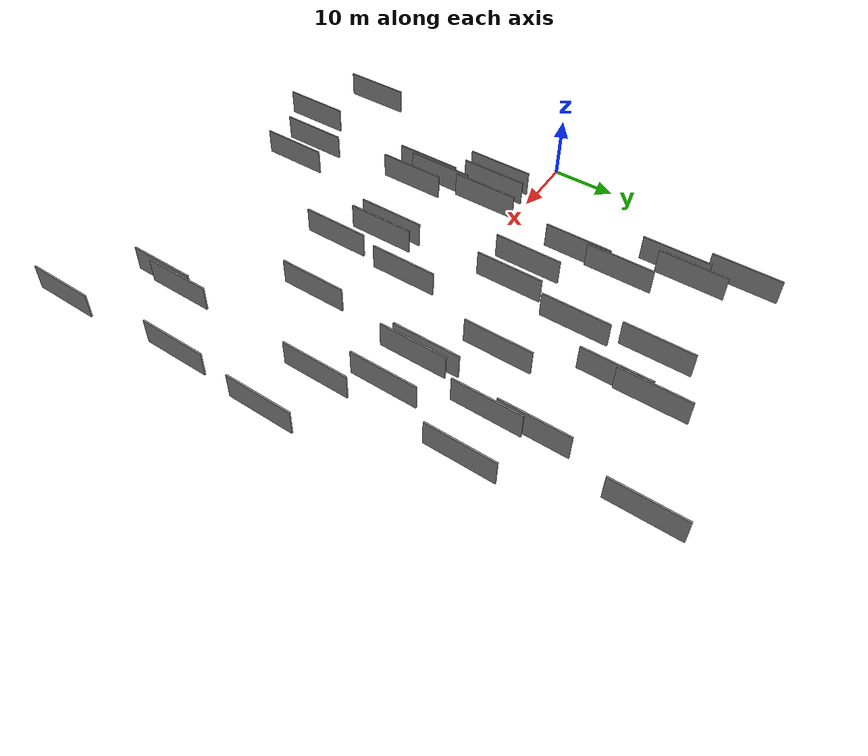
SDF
<sdf version="1.6">
 <world name="default">
  <scene>
   <sky><clouds><speed>12</speed></clouds></sky>
   <ambient>0.4 0.4 0.4 1</ambient>
   <background>0.7 0.7 0.7 1</background>
   <shadows>1</shadows>
  </scene>
  <gravity>0 0 -9.8066</gravity>
  <magnetic_field>6e-06 2.3e-05 -4.2e-05</magnetic_field>
  <physics default="0" name="default_physics" type="ode">
   <ode>
    <solver>
     <type>quick</type>
     <iters>10</iters>
     <sor>1.0</sor>
     <use_dynamic_moi_rescaling>0</use_dynamic_moi_rescaling>
    </solver>
    <constraints>
     <cfm>0</cfm>
     <erp>0.2</erp>
     <contact_max_correcting_vel>100</contact_max_correcting_vel>
     <contact_surface_layer>0.001</contact_surface_layer>
    </constraints>
   </ode>
   <max_step_size>0.004</max_step_size>
   <real_time_factor>1</real_time_factor>
   <real_time_update_rate>250</real_time_update_rate>
  </physics>
  <light name="sun" type="directional">
   <pose>0 0 10 0 0 0</pose>
   <diffuse>0.8 0.8 0.8 1</diffuse>
   <specular>0.2 0.2 0.2 1</specular>
   <attenuation>
    <range>1000</range>
    <constant>0.9</constant>
    <linear>0.01</linear>
    <quadratic>0.001</quadratic>
   </attenuation>
   <direction>-0.5 0.1 -0.9</direction>
  </light>
  <model name="grey_wall_1">
   <static>1</static>
   <pose>34.4496 -11.1289 5.0 0.000000 0.000000 1.570796</pose>
   <link name="link">
    <pose>0 0 2.00 0 0 0</pose>
    <collision name="collision"><geometry><box><size>10.00 0.2 4.00</size></box></geometry></collision>
    <visual name="visual">
     <cast_shadows>0</cast_shadows>
     <geometry><box><size>10.00 0.2 4.00</size></box></geometry>
     <material>
      <script>
       <uri>model://grey_wall/materials/scripts</uri>
       <uri>model://grey_wall/materials/textures</uri>
       <name>vrc/grey_wall</name>
      </script>
     </material>
    </visual>
   </link>
  </model>
  <model name="grey_wall_2">
   <static>1</static>
   <pose>59.3019 -27.0658 5.0 0.000000 0.000000 1.570796</pose>
   <link name="link">
    <pose>0 0 2.00 0 0 0</pose>
    <collision name="collision"><geometry><box><size>10.00 0.2 4.00</size></box></geometry></collision>
    <visual name="visual">
     <cast_shadows>0</cast_shadows>
     <geometry><box><size>10.00 0.2 4.00</size></box></geometry>
     <material>
      <script>
       <uri>model://grey_wall/materials/scripts</uri>
       <uri>model://grey_wall/materials/textures</uri>
       <name>vrc/grey_wall</name>
      </script>
     </material>
    </visual>
   </link>
  </model>
  <model name="grey_wall_3">
   <static>1</static>
   <pose>27.9781 9.4192 5.0 0.000000 0.000000 1.570796</pose>
   <link name="link">
    <pose>0 0 2.00 0 0 0</pose>
    <collision name="collision"><geometry><box><size>10.00 0.2 4.00</size></box></geometry></collision>
    <visual name="visual">
     <cast_shadows>0</cast_shadows>
     <geometry><box><size>10.00 0.2 4.00</size></box></geometry>
     <material>
      <script>
       <uri>model://grey_wall/materials/scripts</uri>
       <uri>model://grey_wall/materials/textures</uri>
       <name>vrc/grey_wall</name>
      </script>
     </material>
    </visual>
   </link>
  </model>
  <model name="grey_wall_4">
   <static>1</static>
   <pose>15.9529 -3.3003 5.0 0.000000 0.000000 1.570796</pose>
   <link name="link">
    <pose>0 0 2.00 0 0 0</pose>
    <collision name="collision"><geometry><box><size>10.00 0.2 4.00</size></box></geometry></collision>
    <visual name="visual">
     <cast_shadows>0</cast_shadows>
     <geometry><box><size>10.00 0.2 4.00</size></box></geometry>
     <material>
      <script>
       <uri>model://grey_wall/materials/scripts</uri>
       <uri>model://grey_wall/materials/textures</uri>
       <name>vrc/grey_wall</name>
      </script>
     </material>
    </visual>
   </link>
  </model>
  <model name="grey_wall_5">
   <static>1</static>
   <pose>52.8896 24.1935 5.0 0.000000 0.000000 1.570796</pose>
   <link name="link">
    <pose>0 0 2.00 0 0 0</pose>
    <collision name="collision"><geometry><box><size>10.00 0.2 4.00</size></box></geometry></collision>
    <visual name="visual">
     <cast_shadows>0</cast_shadows>
     <geometry><box><size>10.00 0.2 4.00</size></box></geometry>
     <material>
      <script>
       <uri>model://grey_wall/materials/scripts</uri>
       <uri>model://grey_wall/materials/textures</uri>
       <name>vrc/grey_wall</name>
      </script>
     </material>
    </visual>
   </link>
  </model>
  <model name="grey_wall_6">
   <static>1</static>
   <pose>49.1046 -11.8776 5.0 0.000000 0.000000 1.570796</pose>
   <link name="link">
    <pose>0 0 2.00 0 0 0</pose>
    <collision name="collision"><geometry><box><size>10.00 0.2 4.00</size></box></geometry></collision>
    <visual name="visual">
     <cast_shadows>0</cast_shadows>
     <geometry><box><size>10.00 0.2 4.00</size></box></geometry>
     <material>
      <script>
       <uri>model://grey_wall/materials/scripts</uri>
       <uri>model://grey_wall/materials/textures</uri>
       <name>vrc/grey_wall</name>
      </script>
     </material>
    </visual>
   </link>
  </model>
  <model name="grey_wall_7">
   <static>1</static>
   <pose>38.8114 -15.9270 5.0 0.000000 0.000000 1.570796</pose>
   <link name="link">
    <pose>0 0 2.00 0 0 0</pose>
    <collision name="collision"><geometry><box><size>10.00 0.2 4.00</size></box></geometry></collision>
    <visual name="visual">
     <cast_shadows>0</cast_shadows>
     <geometry><box><size>10.00 0.2 4.00</size></box></geometry>
     <material>
      <script>
       <uri>model://grey_wall/materials/scripts</uri>
       <uri>model://grey_wall/materials/textures</uri>
       <name>vrc/grey_wall</name>
      </script>
     </material>
    </visual>
   </link>
  </model>
  <model name="grey_wall_8">
   <static>1</static>
   <pose>68.4907 -4.5874 5.0 0.000000 0.000000 1.570796</pose>
   <link name="link">
    <pose>0 0 2.00 0 0 0</pose>
    <collision name="collision"><geometry><box><size>10.00 0.2 4.00</size></box></geometry></collision>
    <visual name="visual">
     <cast_shadows>0</cast_shadows>
     <geometry><box><size>10.00 0.2 4.00</size></box></geometry>
     <material>
      <script>
       <uri>model://grey_wall/materials/scripts</uri>
       <uri>model://grey_wall/materials/textures</uri>
       <name>vrc/grey_wall</name>
      </script>
     </material>
    </visual>
   </link>
  </model>
  <model name="grey_wall_9">
   <static>1</static>
   <pose>22.0133 14.1155 5.0 0.000000 0.000000 1.570796</pose>
   <link name="link">
    <pose>0 0 2.00 0 0 0</pose>
    <collision name="collision"><geometry><box><size>10.00 0.2 4.00</size></box></geometry></collision>
    <visual name="visual">
     <cast_shadows>0</cast_shadows>
     <geometry><box><size>10.00 0.2 4.00</size></box></geometry>
     <material>
      <script>
       <uri>model://grey_wall/materials/scripts</uri>
       <uri>model://grey_wall/materials/textures</uri>
       <name>vrc/grey_wall</name>
      </script>
     </material>
    </visual>
   </link>
  </model>
  <model name="grey_wall_10">
   <static>1</static>
   <pose>34.5735 20.1763 5.0 0.000000 0.000000 1.570796</pose>
   <link name="link">
    <pose>0 0 2.00 0 0 0</pose>
    <collision name="collision"><geometry><box><size>10.00 0.2 4.00</size></box></geometry></collision>
    <visual name="visual">
     <cast_shadows>0</cast_shadows>
     <geometry><box><size>10.00 0.2 4.00</size></box></geometry>
     <material>
      <script>
       <uri>model://grey_wall/materials/scripts</uri>
       <uri>model://grey_wall/materials/textures</uri>
       <name>vrc/grey_wall</name>
      </script>
     </material>
    </visual>
   </link>
  </model>
  <model name="grey_wall_11">
   <static>1</static>
   <pose>22.4324 20.7418 5.0 0.000000 0.000000 1.570796</pose>
   <link name="link">
    <pose>0 0 2.00 0 0 0</pose>
    <collision name="collision"><geometry><box><size>10.00 0.2 4.00</size></box></geometry></collision>
    <visual name="visual">
     <cast_shadows>0</cast_shadows>
     <geometry><box><size>10.00 0.2 4.00</size></box></geometry>
     <material>
      <script>
       <uri>model://grey_wall/materials/scripts</uri>
       <uri>model://grey_wall/materials/textures</uri>
       <name>vrc/grey_wall</name>
      </script>
     </material>
    </visual>
   </link>
  </model>
  <model name="grey_wall_12">
   <static>1</static>
   <pose>50.0039 7.1209 5.0 0.000000 0.000000 1.570796</pose>
   <link name="link">
    <pose>0 0 2.00 0 0 0</pose>
    <collision name="collision"><geometry><box><size>10.00 0.2 4.00</size></box></geometry></collision>
    <visual name="visual">
     <cast_shadows>0</cast_shadows>
     <geometry><box><size>10.00 0.2 4.00</size></box></geometry>
     <material>
      <script>
       <uri>model://grey_wall/materials/scripts</uri>
       <uri>model://grey_wall/materials/textures</uri>
       <name>vrc/grey_wall</name>
      </script>
     </material>
    </visual>
   </link>
  </model>
  <model name="grey_wall_13">
   <static>1</static>
   <pose>22.4586 -33.0070 5.0 0.000000 0.000000 1.570796</pose>
   <link name="link">
    <pose>0 0 2.00 0 0 0</pose>
    <collision name="collision"><geometry><box><size>10.00 0.2 4.00</size></box></geometry></collision>
    <visual name="visual">
     <cast_shadows>0</cast_shadows>
     <geometry><box><size>10.00 0.2 4.00</size></box></geometry>
     <material>
      <script>
       <uri>model://grey_wall/materials/scripts</uri>
       <uri>model://grey_wall/materials/textures</uri>
       <name>vrc/grey_wall</name>
      </script>
     </material>
    </visual>
   </link>
  </model>
  <model name="grey_wall_14">
   <static>1</static>
   <pose>17.9981 29.4869 5.0 0.000000 0.000000 1.570796</pose>
   <link name="link">
    <pose>0 0 2.00 0 0 0</pose>
    <collision name="collision"><geometry><box><size>10.00 0.2 4.00</size></box></geometry></collision>
    <visual name="visual">
     <cast_shadows>0</cast_shadows>
     <geometry><box><size>10.00 0.2 4.00</size></box></geometry>
     <material>
      <script>
       <uri>model://grey_wall/materials/scripts</uri>
       <uri>model://grey_wall/materials/textures</uri>
       <name>vrc/grey_wall</name>
      </script>
     </material>
    </visual>
   </link>
  </model>
  <model name="grey_wall_15">
   <static>1</static>
   <pose>16.5381 -37.2763 5.0 0.000000 0.000000 1.570796</pose>
   <link name="link">
    <pose>0 0 2.00 0 0 0</pose>
    <collision name="collision"><geometry><box><size>10.00 0.2 4.00</size></box></geometry></collision>
    <visual name="visual">
     <cast_shadows>0</cast_shadows>
     <geometry><box><size>10.00 0.2 4.00</size></box></geometry>
     <material>
      <script>
       <uri>model://grey_wall/materials/scripts</uri>
       <uri>model://grey_wall/materials/textures</uri>
       <name>vrc/grey_wall</name>
      </script>
     </material>
    </visual>
   </link>
  </model>
  <model name="grey_wall_16">
   <static>1</static>
   <pose>58.7569 -30.4392 5.0 0.000000 0.000000 1.570796</pose>
   <link name="link">
    <pose>0 0 2.00 0 0 0</pose>
    <collision name="collision"><geometry><box><size>10.00 0.2 4.00</size></box></geometry></collision>
    <visual name="visual">
     <cast_shadows>0</cast_shadows>
     <geometry><box><size>10.00 0.2 4.00</size></box></geometry>
     <material>
      <script>
       <uri>model://grey_wall/materials/scripts</uri>
       <uri>model://grey_wall/materials/textures</uri>
       <name>vrc/grey_wall</name>
      </script>
     </material>
    </visual>
   </link>
  </model>
  <model name="grey_wall_17">
   <static>1</static>
   <pose>53.4282 18.0994 5.0 0.000000 0.000000 1.570796</pose>
   <link name="link">
    <pose>0 0 2.00 0 0 0</pose>
    <collision name="collision"><geometry><box><size>10.00 0.2 4.00</size></box></geometry></collision>
    <visual name="visual">
     <cast_shadows>0</cast_shadows>
     <geometry><box><size>10.00 0.2 4.00</size></box></geometry>
     <material>
      <script>
       <uri>model://grey_wall/materials/scripts</uri>
       <uri>model://grey_wall/materials/textures</uri>
       <name>vrc/grey_wall</name>
      </script>
     </material>
    </visual>
   </link>
  </model>
  <model name="grey_wall_18">
   <static>1</static>
   <pose>32.4896 -10.6881 5.0 0.000000 0.000000 1.570796</pose>
   <link name="link">
    <pose>0 0 2.00 0 0 0</pose>
    <collision name="collision"><geometry><box><size>10.00 0.2 4.00</size></box></geometry></collision>
    <visual name="visual">
     <cast_shadows>0</cast_shadows>
     <geometry><box><size>10.00 0.2 4.00</size></box></geometry>
     <material>
      <script>
       <uri>model://grey_wall/materials/scripts</uri>
       <uri>model://grey_wall/materials/textures</uri>
       <name>vrc/grey_wall</name>
      </script>
     </material>
    </visual>
   </link>
  </model>
  <model name="grey_wall_19">
   <static>1</static>
   <pose>16.6630 26.5449 5.0 0.000000 0.000000 1.570796</pose>
   <link name="link">
    <pose>0 0 2.00 0 0 0</pose>
    <collision name="collision"><geometry><box><size>10.00 0.2 4.00</size></box></geometry></collision>
    <visual name="visual">
     <cast_shadows>0</cast_shadows>
     <geometry><box><size>10.00 0.2 4.00</size></box></geometry>
     <material>
      <script>
       <uri>model://grey_wall/materials/scripts</uri>
       <uri>model://grey_wall/materials/textures</uri>
       <name>vrc/grey_wall</name>
      </script>
     </material>
    </visual>
   </link>
  </model>
  <model name="grey_wall_20">
   <static>1</static>
   <pose>40.3777 33.6962 5.0 0.000000 0.000000 1.570796</pose>
   <link name="link">
    <pose>0 0 2.00 0 0 0</pose>
    <collision name="collision"><geometry><box><size>10.00 0.2 4.00</size></box></geometry></collision>
    <visual name="visual">
     <cast_shadows>0</cast_shadows>
     <geometry><box><size>10.00 0.2 4.00</size></box></geometry>
     <material>
      <script>
       <uri>model://grey_wall/materials/scripts</uri>
       <uri>model://grey_wall/materials/textures</uri>
       <name>vrc/grey_wall</name>
      </script>
     </material>
    </visual>
   </link>
  </model>
  <model name="grey_wall_21">
   <static>1</static>
   <pose>44.3203 14.2670 5.0 0.000000 0.000000 1.570796</pose>
   <link name="link">
    <pose>0 0 2.00 0 0 0</pose>
    <collision name="collision"><geometry><box><size>10.00 0.2 4.00</size></box></geometry></collision>
    <visual name="visual">
     <cast_shadows>0</cast_shadows>
     <geometry><box><size>10.00 0.2 4.00</size></box></geometry>
     <material>
      <script>
       <uri>model://grey_wall/materials/scripts</uri>
       <uri>model://grey_wall/materials/textures</uri>
       <name>vrc/grey_wall</name>
      </script>
     </material>
    </visual>
   </link>
  </model>
  <model name="grey_wall_22">
   <static>1</static>
   <pose>69.1203 -38.8367 5.0 0.000000 0.000000 1.570796</pose>
   <link name="link">
    <pose>0 0 2.00 0 0 0</pose>
    <collision name="collision"><geometry><box><size>10.00 0.2 4.00</size></box></geometry></collision>
    <visual name="visual">
     <cast_shadows>0</cast_shadows>
     <geometry><box><size>10.00 0.2 4.00</size></box></geometry>
     <material>
      <script>
       <uri>model://grey_wall/materials/scripts</uri>
       <uri>model://grey_wall/materials/textures</uri>
       <name>vrc/grey_wall</name>
      </script>
     </material>
    </visual>
   </link>
  </model>
  <model name="grey_wall_23">
   <static>1</static>
   <pose>18.4504 -13.5211 5.0 0.000000 0.000000 1.570796</pose>
   <link name="link">
    <pose>0 0 2.00 0 0 0</pose>
    <collision name="collision"><geometry><box><size>10.00 0.2 4.00</size></box></geometry></collision>
    <visual name="visual">
     <cast_shadows>0</cast_shadows>
     <geometry><box><size>10.00 0.2 4.00</size></box></geometry>
     <material>
      <script>
       <uri>model://grey_wall/materials/scripts</uri>
       <uri>model://grey_wall/materials/textures</uri>
       <name>vrc/grey_wall</name>
      </script>
     </material>
    </visual>
   </link>
  </model>
  <model name="grey_wall_24">
   <static>1</static>
   <pose>19.5752 -2.6902 5.0 0.000000 0.000000 1.570796</pose>
   <link name="link">
    <pose>0 0 2.00 0 0 0</pose>
    <collision name="collision"><geometry><box><size>10.00 0.2 4.00</size></box></geometry></collision>
    <visual name="visual">
     <cast_shadows>0</cast_shadows>
     <geometry><box><size>10.00 0.2 4.00</size></box></geometry>
     <material>
      <script>
       <uri>model://grey_wall/materials/scripts</uri>
       <uri>model://grey_wall/materials/textures</uri>
       <name>vrc/grey_wall</name>
      </script>
     </material>
    </visual>
   </link>
  </model>
  <model name="grey_wall_25">
   <static>1</static>
   <pose>14.4947 35.7516 5.0 0.000000 0.000000 1.570796</pose>
   <link name="link">
    <pose>0 0 2.00 0 0 0</pose>
    <collision name="collision"><geometry><box><size>10.00 0.2 4.00</size></box></geometry></collision>
    <visual name="visual">
     <cast_shadows>0</cast_shadows>
     <geometry><box><size>10.00 0.2 4.00</size></box></geometry>
     <material>
      <script>
       <uri>model://grey_wall/materials/scripts</uri>
       <uri>model://grey_wall/materials/textures</uri>
       <name>vrc/grey_wall</name>
      </script>
     </material>
    </visual>
   </link>
  </model>
  <model name="grey_wall_26">
   <static>1</static>
   <pose>27.2730 -33.1386 5.0 0.000000 0.000000 1.570796</pose>
   <link name="link">
    <pose>0 0 2.00 0 0 0</pose>
    <collision name="collision"><geometry><box><size>10.00 0.2 4.00</size></box></geometry></collision>
    <visual name="visual">
     <cast_shadows>0</cast_shadows>
     <geometry><box><size>10.00 0.2 4.00</size></box></geometry>
     <material>
      <script>
       <uri>model://grey_wall/materials/scripts</uri>
       <uri>model://grey_wall/materials/textures</uri>
       <name>vrc/grey_wall</name>
      </script>
     </material>
    </visual>
   </link>
  </model>
  <model name="grey_wall_27">
   <static>1</static>
   <pose>67.8254 -19.3882 5.0 0.000000 0.000000 1.570796</pose>
   <link name="link">
    <pose>0 0 2.00 0 0 0</pose>
    <collision name="collision"><geometry><box><size>10.00 0.2 4.00</size></box></geometry></collision>
    <visual name="visual">
     <cast_shadows>0</cast_shadows>
     <geometry><box><size>10.00 0.2 4.00</size></box></geometry>
     <material>
      <script>
       <uri>model://grey_wall/materials/scripts</uri>
       <uri>model://grey_wall/materials/textures</uri>
       <name>vrc/grey_wall</name>
      </script>
     </material>
    </visual>
   </link>
  </model>
  <model name="grey_wall_28">
   <static>1</static>
   <pose>6.2863 -32.2509 5.0 0.000000 0.000000 1.570796</pose>
   <link name="link">
    <pose>0 0 2.00 0 0 0</pose>
    <collision name="collision"><geometry><box><size>10.00 0.2 4.00</size></box></geometry></collision>
    <visual name="visual">
     <cast_shadows>0</cast_shadows>
     <geometry><box><size>10.00 0.2 4.00</size></box></geometry>
     <material>
      <script>
       <uri>model://grey_wall/materials/scripts</uri>
       <uri>model://grey_wall/materials/textures</uri>
       <name>vrc/grey_wall</name>
      </script>
     </material>
    </visual>
   </link>
  </model>
  <model name="grey_wall_29">
   <static>1</static>
   <pose>32.5846 9.0993 5.0 0.000000 0.000000 1.570796</pose>
   <link name="link">
    <pose>0 0 2.00 0 0 0</pose>
    <collision name="collision"><geometry><box><size>10.00 0.2 4.00</size></box></geometry></collision>
    <visual name="visual">
     <cast_shadows>0</cast_shadows>
     <geometry><box><size>10.00 0.2 4.00</size></box></geometry>
     <material>
      <script>
       <uri>model://grey_wall/materials/scripts</uri>
       <uri>model://grey_wall/materials/textures</uri>
       <name>vrc/grey_wall</name>
      </script>
     </material>
    </visual>
   </link>
  </model>
  <model name="grey_wall_30">
   <static>1</static>
   <pose>13.4768 -3.6533 5.0 0.000000 0.000000 1.570796</pose>
   <link name="link">
    <pose>0 0 2.00 0 0 0</pose>
    <collision name="collision"><geometry><box><size>10.00 0.2 4.00</size></box></geometry></collision>
    <visual name="visual">
     <cast_shadows>0</cast_shadows>
     <geometry><box><size>10.00 0.2 4.00</size></box></geometry>
     <material>
      <script>
       <uri>model://grey_wall/materials/scripts</uri>
       <uri>model://grey_wall/materials/textures</uri>
       <name>vrc/grey_wall</name>
      </script>
     </material>
    </visual>
   </link>
  </model>
  <model name="grey_wall_31">
   <static>1</static>
   <pose>40.0556 28.5133 5.0 0.000000 0.000000 1.570796</pose>
   <link name="link">
    <pose>0 0 2.00 0 0 0</pose>
    <collision name="collision"><geometry><box><size>10.00 0.2 4.00</size></box></geometry></collision>
    <visual name="visual">
     <cast_shadows>0</cast_shadows>
     <geometry><box><size>10.00 0.2 4.00</size></box></geometry>
     <material>
      <script>
       <uri>model://grey_wall/materials/scripts</uri>
       <uri>model://grey_wall/materials/textures</uri>
       <name>vrc/grey_wall</name>
      </script>
     </material>
    </visual>
   </link>
  </model>
  <model name="grey_wall_32">
   <static>1</static>
   <pose>18.9903 -11.0794 5.0 0.000000 0.000000 1.570796</pose>
   <link name="link">
    <pose>0 0 2.00 0 0 0</pose>
    <collision name="collision"><geometry><box><size>10.00 0.2 4.00</size></box></geometry></collision>
    <visual name="visual">
     <cast_shadows>0</cast_shadows>
     <geometry><box><size>10.00 0.2 4.00</size></box></geometry>
     <material>
      <script>
       <uri>model://grey_wall/materials/scripts</uri>
       <uri>model://grey_wall/materials/textures</uri>
       <name>vrc/grey_wall</name>
      </script>
     </material>
    </visual>
   </link>
  </model>
  <model name="grey_wall_33">
   <static>1</static>
   <pose>33.1978 31.1444 5.0 0.000000 0.000000 1.570796</pose>
   <link name="link">
    <pose>0 0 2.00 0 0 0</pose>
    <collision name="collision"><geometry><box><size>10.00 0.2 4.00</size></box></geometry></collision>
    <visual name="visual">
     <cast_shadows>0</cast_shadows>
     <geometry><box><size>10.00 0.2 4.00</size></box></geometry>
     <material>
      <script>
       <uri>model://grey_wall/materials/scripts</uri>
       <uri>model://grey_wall/materials/textures</uri>
       <name>vrc/grey_wall</name>
      </script>
     </material>
    </visual>
   </link>
  </model>
  <model name="grey_wall_34">
   <static>1</static>
   <pose>21.8254 -14.3905 5.0 0.000000 0.000000 1.570796</pose>
   <link name="link">
    <pose>0 0 2.00 0 0 0</pose>
    <collision name="collision"><geometry><box><size>10.00 0.2 4.00</size></box></geometry></collision>
    <visual name="visual">
     <cast_shadows>0</cast_shadows>
     <geometry><box><size>10.00 0.2 4.00</size></box></geometry>
     <material>
      <script>
       <uri>model://grey_wall/materials/scripts</uri>
       <uri>model://grey_wall/materials/textures</uri>
       <name>vrc/grey_wall</name>
      </script>
     </material>
    </visual>
   </link>
  </model>
  <model name="grey_wall_35">
   <static>1</static>
   <pose>51.0617 5.7978 5.0 0.000000 0.000000 1.570796</pose>
   <link name="link">
    <pose>0 0 2.00 0 0 0</pose>
    <collision name="collision"><geometry><box><size>10.00 0.2 4.00</size></box></geometry></collision>
    <visual name="visual">
     <cast_shadows>0</cast_shadows>
     <geometry><box><size>10.00 0.2 4.00</size></box></geometry>
     <material>
      <script>
       <uri>model://grey_wall/materials/scripts</uri>
       <uri>model://grey_wall/materials/textures</uri>
       <name>vrc/grey_wall</name>
      </script>
     </material>
    </visual>
   </link>
  </model>
  <model name="grey_wall_36">
   <static>1</static>
   <pose>56.9710 5.4645 5.0 0.000000 0.000000 1.570796</pose>
   <link name="link">
    <pose>0 0 2.00 0 0 0</pose>
    <collision name="collision"><geometry><box><size>10.00 0.2 4.00</size></box></geometry></collision>
    <visual name="visual">
     <cast_shadows>0</cast_shadows>
     <geometry><box><size>10.00 0.2 4.00</size></box></geometry>
     <material>
      <script>
       <uri>model://grey_wall/materials/scripts</uri>
       <uri>model://grey_wall/materials/textures</uri>
       <name>vrc/grey_wall</name>
      </script>
     </material>
    </visual>
   </link>
  </model>
  <model name="grey_wall_37">
   <static>1</static>
   <pose>60.5037 -2.3894 5.0 0.000000 0.000000 1.570796</pose>
   <link name="link">
    <pose>0 0 2.00 0 0 0</pose>
    <collision name="collision"><geometry><box><size>10.00 0.2 4.00</size></box></geometry></collision>
    <visual name="visual">
     <cast_shadows>0</cast_shadows>
     <geometry><box><size>10.00 0.2 4.00</size></box></geometry>
     <material>
      <script>
       <uri>model://grey_wall/materials/scripts</uri>
       <uri>model://grey_wall/materials/textures</uri>
       <name>vrc/grey_wall</name>
      </script>
     </material>
    </visual>
   </link>
  </model>
  <model name="grey_wall_38">
   <static>1</static>
   <pose>55.3983 39.5495 5.0 0.000000 0.000000 1.570796</pose>
   <link name="link">
    <pose>0 0 2.00 0 0 0</pose>
    <collision name="collision"><geometry><box><size>10.00 0.2 4.00</size></box></geometry></collision>
    <visual name="visual">
     <cast_shadows>0</cast_shadows>
     <geometry><box><size>10.00 0.2 4.00</size></box></geometry>
     <material>
      <script>
       <uri>model://grey_wall/materials/scripts</uri>
       <uri>model://grey_wall/materials/textures</uri>
       <name>vrc/grey_wall</name>
      </script>
     </material>
    </visual>
   </link>
  </model>
  <model name="grey_wall_39">
   <static>1</static>
   <pose>39.7208 -3.5431 5.0 0.000000 0.000000 1.570796</pose>
   <link name="link">
    <pose>0 0 2.00 0 0 0</pose>
    <collision name="collision"><geometry><box><size>10.00 0.2 4.00</size></box></geometry></collision>
    <visual name="visual">
     <cast_shadows>0</cast_shadows>
     <geometry><box><size>10.00 0.2 4.00</size></box></geometry>
     <material>
      <script>
       <uri>model://grey_wall/materials/scripts</uri>
       <uri>model://grey_wall/materials/textures</uri>
       <name>vrc/grey_wall</name>
      </script>
     </material>
    </visual>
   </link>
  </model>
  <model name="grey_wall_40">
   <static>1</static>
   <pose>60.7034 18.9148 5.0 0.000000 0.000000 1.570796</pose>
   <link name="link">
    <pose>0 0 2.00 0 0 0</pose>
    <collision name="collision"><geometry><box><size>10.00 0.2 4.00</size></box></geometry></collision>
    <visual name="visual">
     <cast_shadows>0</cast_shadows>
     <geometry><box><size>10.00 0.2 4.00</size></box></geometry>
     <material>
      <script>
       <uri>model://grey_wall/materials/scripts</uri>
       <uri>model://grey_wall/materials/textures</uri>
       <name>vrc/grey_wall</name>
      </script>
     </material>
    </visual>
   </link>
  </model>
 </world>
</sdf>
